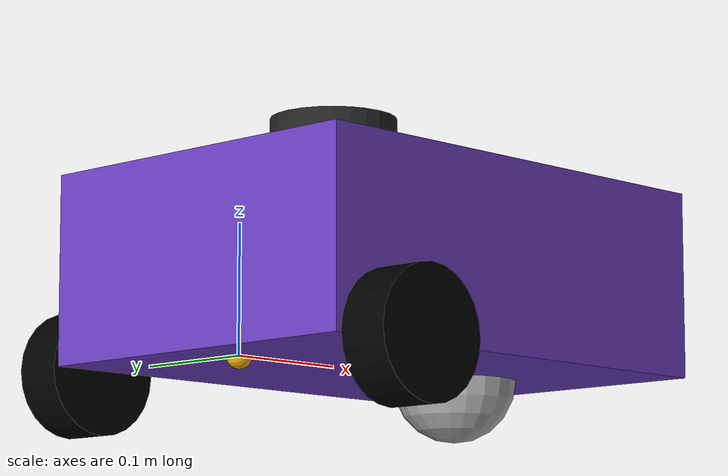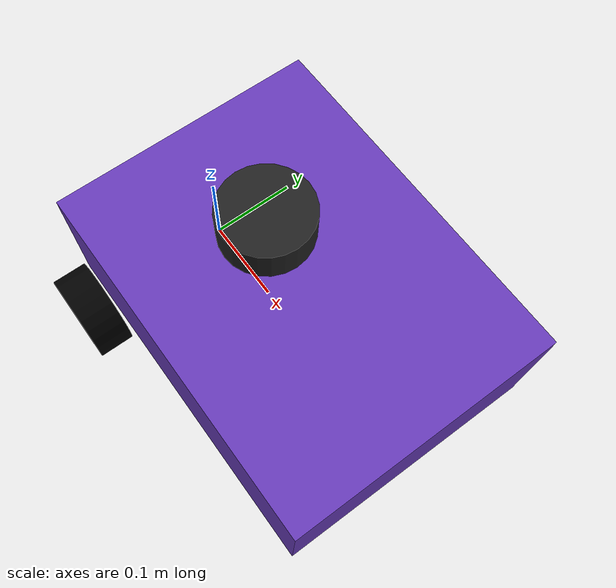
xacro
<?xml version="1.0"?>
<robot xmlns:xacro="http://www.ros.org/wiki/xacro" name="diff_drive_robot">

    <xacro:include filename="$(find diff_drive_robot)/urdf/robot.gazebo" />
    <xacro:include filename="inertial_macros.xacro" />

    <xacro:arg name="prefix" default="robot_1"/>

    <xacro:macro name="diff_drive_robot" params="prefix xyz:='0 0 0' rpy:='0 0 0'">

        <!-- Base footprint (reference frame) -->
        <link name="${prefix}_base_footprint">
            <visual>
                <geometry>
                    <sphere radius="0.01"/>
                </geometry>
            </visual>
        </link>

        <!-- Main base link -->
        <joint name="${prefix}_base_joint" type="fixed">
            <parent link="${prefix}_base_footprint"/>
            <child link="${prefix}_base_link"/>
            <origin xyz="0 0 0" rpy="0 0 0"/>
        </joint>

        <link name="${prefix}_base_link">
            <visual>
                <origin xyz="0.15 0 0.075"/>
                <geometry>
                    <box size="0.4 0.3 0.15"/>
                </geometry>
                <material name="${prefix}_base_material">
                    <color rgba="0.40 0.23 0.72 1.0"/>
                </material>
            </visual>
            <collision>
                <origin xyz="0.15 0 0.075"/>
                <geometry>
                    <box size="0.3 0.3 0.15"/>
                </geometry>
            </collision>
            <xacro:inertial_box mass="0.5" x="0.3" y="0.3" z="0.15">
                <origin xyz="0.15 0 0.075" rpy="0 0 0"/>
            </xacro:inertial_box>
        </link>

        <!-- Left wheel -->
        <joint name="${prefix}_left_wheel_joint" type="continuous">
            <origin xyz="0 0.175 0" rpy="-${pi/2} 0 0"/>
            <child link="${prefix}_left_wheel"/>
            <parent link="${prefix}_base_link"/>
            <axis xyz="0 0 1"/>
        </joint>

        <link name="${prefix}_left_wheel">
            <xacro:inertial_cylinder mass="0.1" length="0.04" radius="0.05">
                <origin xyz="0 0 0" rpy="0 0 0"/>
            </xacro:inertial_cylinder>
            <collision>
                <geometry>
                    <cylinder radius="0.05" length="0.04"/>
                </geometry>
            </collision>
            <visual>
                <geometry>
                    <cylinder radius="0.05" length="0.04"/>
                </geometry>
                <material name="${prefix}_wheel_material">
                    <color rgba="0.0 0.0 0.0 1.0"/>
                </material>
            </visual>
        </link>

        <!-- Right wheel -->
        <joint name="${prefix}_right_wheel_joint" type="continuous">
            <origin xyz="0 -0.175 0" rpy="${pi/2} 0 0"/>
            <child link="${prefix}_right_wheel"/>
            <parent link="${prefix}_base_link"/>
            <axis xyz="0 0 -1"/>
        </joint>

        <link name="${prefix}_right_wheel">
            <xacro:inertial_cylinder mass="0.1" length="0.04" radius="0.05">
                <origin xyz="0 0 0" rpy="0 0 0"/>
            </xacro:inertial_cylinder>
            <visual>
                <geometry>
                    <cylinder radius="0.05" length="0.04"/>
                </geometry>
                <material name="${prefix}_wheel_material">
                    <color rgba="0.0 0.0 0.0 1.0"/>
                </material>
            </visual>
            <collision>
                <geometry>
                    <cylinder radius="0.05" length="0.04"/>
                </geometry>
            </collision>
        </link>

        <!-- Castor wheel -->
        <joint name="${prefix}_castor_wheel_joint" type="fixed">
            <parent link="${prefix}_base_link"/>
            <child link="${prefix}_castor_wheel"/>
            <origin xyz="0.24 0 0"/>
        </joint>

        <link name="${prefix}_castor_wheel">
            <xacro:inertial_sphere mass="0.05" radius="0.05">
                <origin xyz="0 0 0" rpy="0 0 0"/>
            </xacro:inertial_sphere>
            <visual>
                <geometry>
                    <sphere radius="0.05"/>
                </geometry>
                <material name="${prefix}_castor_material">
                    <color rgba="0.62 0.62 0.62 1.0"/>
                </material>
            </visual>
            <collision>
                <geometry>
                    <sphere radius="0.05"/>
                </geometry>
            </collision>
        </link>

        <!-- Lidar Sensor -->
        <joint name="${prefix}_laser_joint" type="fixed">
            <parent link="${prefix}_base_footprint"/>
            <child link="${prefix}_laser_frame"/>
            <origin xyz="0.1 0 0.175" rpy="0 0 0"/>
        </joint>

        <link name="${prefix}_laser_frame">
            <visual>
                <origin xyz="0 0 0"/>
                <geometry>
                    <cylinder length="0.04" radius="0.05"/>
                </geometry>
                <material name="${prefix}_laser_material">
                    <color rgba="0.13 0.13 0.13 1.0"/>
                </material>
            </visual>
            <collision>
                <origin xyz="0 0 0"/>
                <geometry>
                    <cylinder length="0.04" radius="0.05"/>
                </geometry>
            </collision>
            <xacro:inertial_cylinder mass="0.1" length="0.04" radius="0.05">
                <origin xyz="0 0 0" rpy="0 0 0"/>
            </xacro:inertial_cylinder>
        </link>

        <!-- IMU Sensor -->
        <joint name="${prefix}_imu_joint" type="fixed">
            <origin xyz="0 0 0" rpy="0 0 0" />
            <parent link="${prefix}_base_footprint"/>
            <child link="${prefix}_imu_link" />
        </joint>

        <link name="${prefix}_imu_link">
        </link>

        <!-- Gazebo Properties -->
        <xacro:gazebo_plugins prefix="${prefix}" />

        <gazebo reference="${prefix}_left_wheel">
            <mu1>1.0</mu1>
            <mu2>1.0</mu2>
        </gazebo>

        <gazebo reference="${prefix}_right_wheel">
            <mu1>1.0</mu1>
            <mu2>1.0</mu2>
        </gazebo>

        <gazebo reference="${prefix}_castor_wheel">
            <mu1>0.000001</mu1>
            <mu2>0.000001</mu2>
        </gazebo>

        <gazebo reference="${prefix}_base_footprint">
            <mu1>1.0</mu1>
            <mu2>1.0</mu2>
        </gazebo>

    </xacro:macro>
    <xacro:diff_drive_robot prefix="$(arg prefix)"/>
</robot>
